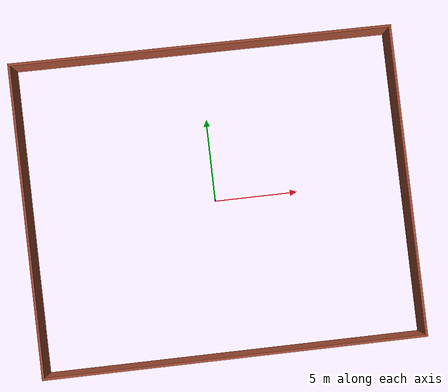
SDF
<?xml version='1.0'?>
<sdf version='1.7'>
  <model name='my_world'>
    <pose>0.088308 0.017559 0 0 -0 0</pose>
    <link name='Wall_2'>
      <collision name='Wall_2_Collision'>
        <geometry>
          <box>
            <size>18.75 0.15 2.5</size>
          </box>
        </geometry>
        <pose>0 0 1.25 0 -0 0</pose>
      </collision>
      <visual name='Wall_2_Visual'>
        <pose>0 0 1.25 0 -0 0</pose>
        <geometry>
          <box>
            <size>18.75 0.15 2.5</size>
          </box>
        </geometry>
        <material>
          <script>
            <uri>file://media/materials/scripts/gazebo.material</uri>
            <name>Gazebo/Bricks</name>
          </script>
          <ambient>1 1 1 1</ambient>
        </material>
        <meta>
          <layer>0</layer>
        </meta>
      </visual>
      <pose>-11.3 -0.000412 0 0 -0 -1.5708</pose>
    </link>
    <link name='Wall_3'>
      <collision name='Wall_3_Collision'>
        <geometry>
          <box>
            <size>22.75 0.15 2.5</size>
          </box>
        </geometry>
        <pose>0 0 1.25 0 -0 0</pose>
      </collision>
      <visual name='Wall_3_Visual'>
        <pose>0 0 1.25 0 -0 0</pose>
        <geometry>
          <box>
            <size>22.75 0.15 2.5</size>
          </box>
        </geometry>
        <material>
          <script>
            <uri>file://media/materials/scripts/gazebo.material</uri>
            <name>Gazebo/Bricks</name>
          </script>
          <ambient>1 1 1 1</ambient>
        </material>
        <meta>
          <layer>0</layer>
        </meta>
      </visual>
      <pose>-0 -9.30041 0 0 -0 0</pose>
    </link>
    <link name='Wall_4'>
      <collision name='Wall_4_Collision'>
        <geometry>
          <box>
            <size>18.5 0.15 2.5</size>
          </box>
        </geometry>
        <pose>0 0 1.25 0 -0 0</pose>
      </collision>
      <visual name='Wall_4_Visual'>
        <pose>0 0 1.25 0 -0 0</pose>
        <geometry>
          <box>
            <size>18.5 0.15 2.5</size>
          </box>
        </geometry>
        <material>
          <script>
            <uri>file://media/materials/scripts/gazebo.material</uri>
            <name>Gazebo/Bricks</name>
          </script>
          <ambient>1 1 1 1</ambient>
        </material>
        <meta>
          <layer>0</layer>
        </meta>
      </visual>
      <pose>11.3 -0.125412 0 0 -0 1.5708</pose>
    </link>
    <link name='Wall_5'>
      <collision name='Wall_5_Collision'>
        <geometry>
          <box>
            <size>22.7514 0.15 2.5</size>
          </box>
        </geometry>
        <pose>0 0 1.25 0 -0 0</pose>
      </collision>
      <visual name='Wall_5_Visual'>
        <pose>0 0 1.25 0 -0 0</pose>
        <geometry>
          <box>
            <size>22.7514 0.15 2.5</size>
          </box>
        </geometry>
        <material>
          <script>
            <uri>file://media/materials/scripts/gazebo.material</uri>
            <name>Gazebo/Bricks</name>
          </script>
          <ambient>1 1 1 1</ambient>
        </material>
        <meta>
          <layer>0</layer>
        </meta>
      </visual>
      <pose>-0 9.17459 0 0 -0 3.13053</pose>
    </link>
    <static>1</static>
  </model>
</sdf>
